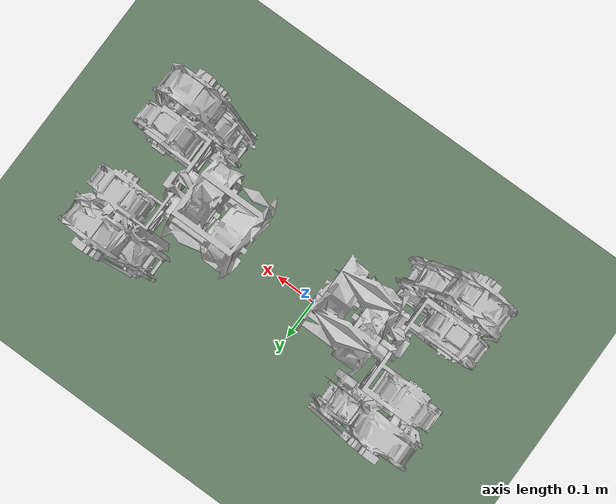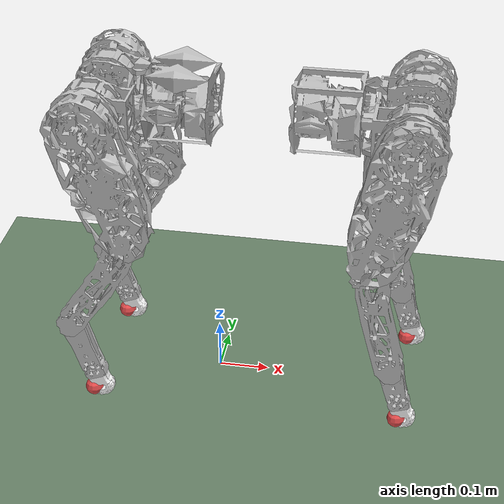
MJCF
<mujoco model="02_Leg_UFDF_260610_8">
  <compiler angle="radian" meshdir="/home/jsh/문서/jsh/simulation/quad/meshes_sim/" />
  <asset>
    <mesh name="base" content_type="model/stl" file="base.STL" />
    <mesh name="HL_hip_link" content_type="model/stl" file="HL_hip_link.STL" />
    <mesh name="HL_thigh_link" content_type="model/stl" file="HL_thigh_link.STL" />
    <mesh name="HL_calf_link" content_type="model/stl" file="HL_calf_link.STL" />
    <mesh name="HL_foot_link" content_type="model/stl" file="HL_foot_link.STL" />
    <mesh name="HL_foot_contact_link" content_type="model/stl" file="HL_foot_contact_link.STL" />
    <mesh name="HR_hip_link" content_type="model/stl" file="HR_hip_link.STL" />
    <mesh name="HR_thigh_link" content_type="model/stl" file="HR_thigh_link.STL" />
    <mesh name="HR_calf_link" content_type="model/stl" file="HR_calf_link.STL" />
    <mesh name="HR_foot_link" content_type="model/stl" file="HR_foot_link.STL" />
    <mesh name="HR_foot_contact_link" content_type="model/stl" file="HR_foot_contact_link.STL" />
    <mesh name="FL_hip_link" content_type="model/stl" file="FL_hip_link.STL" />
    <mesh name="FL_thigh_link" content_type="model/stl" file="FL_thigh_link.STL" />
    <mesh name="FL_calf_link" content_type="model/stl" file="FL_calf_link.STL" />
    <mesh name="FL_foot_link" content_type="model/stl" file="FL_foot_link.STL" />
    <mesh name="FL_foot_contact_link" content_type="model/stl" file="FL_foot_contact_link.STL" />
    <mesh name="FR_hip_link" content_type="model/stl" file="FR_hip_link.STL" />
    <mesh name="FR_thigh_link" content_type="model/stl" file="FR_thigh_link.STL" />
    <mesh name="FR_calf_link" content_type="model/stl" file="FR_calf_link.STL" />
    <mesh name="FR_foot_link" content_type="model/stl" file="FR_foot_link.STL" />
    <mesh name="FR_foot_contact_link" content_type="model/stl" file="FR_foot_contact_link.STL" />
  </asset>
  <worldbody>
    <body name="base" pos="0 0 0.6031">
      <freejoint name="root" />
      <inertial pos="0.075 1.5456e-12 4.1817e-05" quat="0.707106 0.707106 0.000998709 0.000998709" mass="5.617" diaginertia="0.00589992 0.0034812 0.00338838" />
      <geom type="mesh" contype="0" conaffinity="0" group="1" density="0" rgba="0.75294 0.75294 0.75294 1" mesh="base" />
      <geom type="mesh" rgba="0.75294 0.75294 0.75294 1" mesh="base" />
      <body name="HL_hip_link" pos="-0.225 0.0225 0">
        <inertial pos="0.03558 0.0378375 -4.9865e-06" mass="1.3265" fullinertia="0.00055394 0.00080297 0.000457195 8.00135e-06 0 0" />
        <joint name="HL_hip_joint" pos="0 0 0" axis="1 0 0" range="-0.6109 0.6109" actuatorfrcrange="-84 84" />
        <geom type="mesh" contype="0" conaffinity="0" group="1" density="0" rgba="0.75294 0.75294 0.75294 1" mesh="HL_hip_link" />
        <geom type="mesh" rgba="0.75294 0.75294 0.75294 1" mesh="HL_hip_link" />
        <body name="HL_thigh_link" pos="0 0.115 0">
          <inertial pos="0.032414 0.000792805 -0.089056" mass="3.021" fullinertia="0.00400885 0.005605 0.00170025 2.18635e-07 0.00096858 -6.0068e-07" />
          <joint name="HL_thigh_joint" pos="0 0 0" axis="0 1 0" range="-1.396 2.094" actuatorfrcrange="-84 84" />
          <geom type="mesh" contype="0" conaffinity="0" group="1" density="0" rgba="0.75294 0.75294 0.75294 1" mesh="HL_thigh_link" />
          <geom type="mesh" rgba="0.75294 0.75294 0.75294 1" mesh="HL_thigh_link" />
          <body name="HL_calf_link" pos="0.078665 0 -0.21613">
            <inertial pos="-0.04561 0.00012675 -0.084011" quat="0.683134 0.18256 0.18256 0.683134" mass="0.592" diaginertia="0.0024327 0.0023203 0.000138265" />
            <joint name="HL_calf_joint" pos="0 0 0" axis="0 1 0" range="-0.524 1.484" actuatorfrcrange="-126 126" />
            <geom type="mesh" contype="0" conaffinity="0" group="1" density="0" rgba="0.75294 0.75294 0.75294 1" mesh="HL_calf_link" />
            <geom type="mesh" rgba="0.75294 0.75294 0.75294 1" mesh="HL_calf_link" />
            <body name="HL_foot_link" pos="-0.1225 0 -0.21218">
              <inertial pos="0.021095 -1.3548e-12 -0.057957" quat="0.696362 -0.12279 -0.122789 0.696365" mass="0.20444" diaginertia="0.00030517 0.000278691 3.05195e-05" />
              <joint name="HL_foot_joint" pos="0 0 0" axis="0 1 0" range="-1.571 0.524" actuatorfrcrange="-168 168" />
              <geom type="mesh" contype="0" conaffinity="0" group="1" density="0" rgba="0.75294 0.75294 0.75294 1" mesh="HL_foot_link" />
              <geom type="mesh" rgba="0.75294 0.75294 0.75294 1" mesh="HL_foot_link" />
              <body name="HL_foot_contact_link" pos="0.0376222 0 -0.103366">
                <inertial pos="0.016812 0 -0.04619" quat="0.579233 0.405573 0.405573 0.579233" mass="0.033311" diaginertia="1.0583e-05 7.75194e-06 6.94896e-06" />
                <geom type="mesh" contype="0" conaffinity="0" group="1" density="0" rgba="1 1 1 1" mesh="HL_foot_contact_link" />
                <geom name="HL_sphere" type="sphere" size="0.018" pos="0 -0.0035 -0.052" rgba="0.9 0.3 0.3 1" friction="0.9 0.02 0.001" condim="3" />
              </body>
            </body>
          </body>
        </body>
      </body>
      <body name="HR_hip_link" pos="-0.225 -0.0225 0">
        <inertial pos="0.03558 -0.0378375 -4.9865e-06" mass="1.3265" fullinertia="0.00055394 0.00080297 0.000457195 -8.00135e-06 0 -0" />
        <joint name="HR_hip_joint" pos="0 0 0" axis="1 0 0" range="-0.6109 0.6109" actuatorfrcrange="-84 84" />
        <geom type="mesh" contype="0" conaffinity="0" group="1" density="0" rgba="0.75294 0.75294 0.75294 1" mesh="HR_hip_link" />
        <geom type="mesh" rgba="0.75294 0.75294 0.75294 1" mesh="HR_hip_link" />
        <body name="HR_thigh_link" pos="0 -0.115 0">
          <inertial pos="0.032414 -0.000792805 -0.089056" mass="3.021" fullinertia="0.00400885 0.005605 0.00170025 -2.18635e-07 0.00096858 6.0068e-07" />
          <joint name="HR_thigh_joint" pos="0 0 0" axis="0 1 0" range="-1.396 2.094" actuatorfrcrange="-84 84" />
          <geom type="mesh" contype="0" conaffinity="0" group="1" density="0" rgba="0.75294 0.75294 0.75294 1" mesh="HR_thigh_link" />
          <geom type="mesh" rgba="0.75294 0.75294 0.75294 1" mesh="HR_thigh_link" />
          <body name="HR_calf_link" pos="0.078665 0 -0.21613">
            <inertial pos="-0.04561 -0.00012405 -0.084011" quat="0.683134 0.18256 0.18256 0.683134" mass="0.592" diaginertia="0.0024327 0.0023203 0.000138265" />
            <joint name="HR_calf_joint" pos="0 0 0" axis="0 1 0" range="-0.524 1.484" actuatorfrcrange="-126 126" />
            <geom type="mesh" contype="0" conaffinity="0" group="1" density="0" rgba="0.75294 0.75294 0.75294 1" mesh="HR_calf_link" />
            <geom type="mesh" rgba="0.75294 0.75294 0.75294 1" mesh="HR_calf_link" />
            <body name="HR_foot_link" pos="-0.1225 0 -0.21218">
              <inertial pos="0.021095 -1.3544e-12 -0.057957" quat="0.696362 -0.12279 -0.122789 0.696365" mass="0.20444" diaginertia="0.00030517 0.000278691 3.05195e-05" />
              <joint name="HR_foot_joint" pos="0 0 0" axis="0 1 0" range="-1.571 0.524" actuatorfrcrange="-168 168" />
              <geom type="mesh" contype="0" conaffinity="0" group="1" density="0" rgba="0.75294 0.75294 0.75294 1" mesh="HR_foot_link" />
              <geom type="mesh" rgba="0.75294 0.75294 0.75294 1" mesh="HR_foot_link" />
              <body name="HR_foot_contact_link" pos="0.0376222 0 -0.103366">
                <inertial pos="0.016812 0 -0.04619" quat="0.579233 0.405573 0.405573 0.579233" mass="0.033311" diaginertia="1.0583e-05 7.75194e-06 6.94896e-06" />
                <geom type="mesh" contype="0" conaffinity="0" group="1" density="0" rgba="1 1 1 1" mesh="HR_foot_contact_link" />
                <geom name="HR_sphere" type="sphere" size="0.018" pos="0 -0.0035 -0.052" rgba="0.9 0.3 0.3 1" friction="0.9 0.02 0.001" condim="3" />
              </body>
            </body>
          </body>
        </body>
      </body>
      <body name="FL_hip_link" pos="0.375 0.0225 0">
        <inertial pos="-0.03558 0.0378375 -4.9865e-06" mass="1.3265" fullinertia="0.00055394 0.00080297 0.000457195 -8.00135e-06 0 0" />
        <joint name="FL_hip_joint" pos="0 0 0" axis="1 0 0" range="-0.6109 0.6109" actuatorfrcrange="-84 84" />
        <geom type="mesh" contype="0" conaffinity="0" group="1" density="0" rgba="0.75294 0.75294 0.75294 1" mesh="FL_hip_link" />
        <geom type="mesh" rgba="0.75294 0.75294 0.75294 1" mesh="FL_hip_link" />
        <body name="FL_thigh_link" pos="0 0.115 0">
          <inertial pos="-0.0245285 0.0007928 -0.091542" mass="3.021" fullinertia="0.0041595 0.005605 0.0015496 -1.654545e-07 -0.00075342 -6.1745e-07" />
          <joint name="FL_thigh_joint" pos="0 0 0" axis="0 1 0" range="-2.0071 1.484" actuatorfrcrange="-84 84" />
          <geom type="mesh" contype="0" conaffinity="0" group="1" density="0" rgba="0.75294 0.75294 0.75294 1" mesh="FL_thigh_link" />
          <geom type="mesh" rgba="0.75294 0.75294 0.75294 1" mesh="FL_thigh_link" />
          <body name="FL_calf_link" pos="-0.059528 0 -0.22216">
            <inertial pos="0.014126 0.00012405 -0.094544" quat="0.704457 -0.0611613 -0.0611613 0.704457" mass="0.592" diaginertia="0.0024327 0.00232031 0.00013827" />
            <joint name="FL_calf_joint" pos="0 0 0" axis="0 1 0" range="-1.9199 0.087" actuatorfrcrange="-126 126" />
            <geom type="mesh" contype="0" conaffinity="0" group="1" density="0" rgba="0.75294 0.75294 0.75294 1" mesh="FL_calf_link" />
            <geom type="mesh" rgba="0.75294 0.75294 0.75294 1" mesh="FL_calf_link" />
            <body name="FL_foot_link" pos="0.042544 0 -0.24128">
              <inertial pos="0.010724 -1.3835e-12 -0.040023" quat="0.701046 -0.0922999 -0.0922971 0.701068" mass="0.15434" diaginertia="0.00013375 0.000113398 2.37161e-05" />
              <joint name="FL_foot_joint" pos="0 0 0" axis="0 1 0" range="-1.309 0.785" actuatorfrcrange="-168 168" />
              <geom type="mesh" contype="0" conaffinity="0" group="1" density="0" rgba="0.75294 0.75294 0.75294 1" mesh="FL_foot_link" />
              <geom type="mesh" rgba="0.75294 0.75294 0.75294 1" mesh="FL_foot_link" />
              <body name="FL_foot_contact_link" pos="0.0181173 0 -0.0676148">
                <inertial pos="0.012722 0 -0.047479" quat="0.560982 0.430463 0.430463 0.560982" mass="0.033311" diaginertia="1.0583e-05 7.75199e-06 6.94891e-06" />
                <geom type="mesh" contype="0" conaffinity="0" group="1" density="0" rgba="1 1 1 1" mesh="FL_foot_contact_link" />
                <geom name="FL_sphere" type="sphere" size="0.018" pos="0 -0.0035 -0.052" rgba="0.9 0.3 0.3 1" friction="0.9 0.02 0.001" condim="3" />
              </body>
            </body>
          </body>
        </body>
      </body>
      <body name="FR_hip_link" pos="0.375 -0.0225 0">
        <inertial pos="-0.03558 -0.0378375 -4.9865e-06" mass="1.3265" fullinertia="0.00055394 0.00080297 0.000457195 8.00135e-06 0 -0" />
        <joint name="FR_hip_joint" pos="0 0 0" axis="1 0 0" range="-0.6109 0.6109" actuatorfrcrange="-84 84" />
        <geom type="mesh" contype="0" conaffinity="0" group="1" density="0" rgba="0.75294 0.75294 0.75294 1" mesh="FR_hip_link" />
        <geom type="mesh" rgba="0.75294 0.75294 0.75294 1" mesh="FR_hip_link" />
        <body name="FR_thigh_link" pos="0 -0.115 0">
          <inertial pos="-0.0245285 -0.0007928 -0.091542" mass="3.021" fullinertia="0.0041595 0.005605 0.0015496 1.654545e-07 -0.00075342 6.1745e-07" />
          <joint name="FR_thigh_joint" pos="0 0 0" axis="0 1 0" range="-2.0071 1.484" actuatorfrcrange="-84 84" />
          <geom type="mesh" contype="0" conaffinity="0" group="1" density="0" rgba="0.75294 0.75294 0.75294 1" mesh="FR_thigh_link" />
          <geom type="mesh" rgba="0.75294 0.75294 0.75294 1" mesh="FR_thigh_link" />
          <body name="FR_calf_link" pos="-0.059528 0 -0.22216">
            <inertial pos="0.014126 -0.00012675 -0.094544" quat="0.704457 -0.0611613 -0.0611613 0.704457" mass="0.592" diaginertia="0.0024327 0.00232031 0.00013827" />
            <joint name="FR_calf_joint" pos="0 0 0" axis="0 1 0" range="-1.9199 0.087" actuatorfrcrange="-126 126" />
            <geom type="mesh" contype="0" conaffinity="0" group="1" density="0" rgba="0.75294 0.75294 0.75294 1" mesh="FR_calf_link" />
            <geom type="mesh" rgba="0.75294 0.75294 0.75294 1" mesh="FR_calf_link" />
            <body name="FR_foot_link" pos="0.042544 0 -0.24128">
              <inertial pos="0.010724 -1.3833e-12 -0.040023" quat="0.701046 -0.0922999 -0.0922971 0.701068" mass="0.15434" diaginertia="0.00013375 0.000113398 2.37161e-05" />
              <joint name="FR_foot_joint" pos="0 0 0" axis="0 1 0" range="-1.309 0.785" actuatorfrcrange="-168 168" />
              <geom type="mesh" contype="0" conaffinity="0" group="1" density="0" rgba="0.75294 0.75294 0.75294 1" mesh="FR_foot_link" />
              <geom type="mesh" rgba="0.75294 0.75294 0.75294 1" mesh="FR_foot_link" />
              <body name="FR_foot_contact_link" pos="0.0181173 0 -0.0676148">
                <inertial pos="0.012722 0 -0.047479" quat="0.560982 0.430463 0.430463 0.560982" mass="0.033311" diaginertia="1.0583e-05 7.75199e-06 6.94891e-06" />
                <geom type="mesh" contype="0" conaffinity="0" group="1" density="0" rgba="1 1 1 1" mesh="FR_foot_contact_link" />
                <geom name="FR_sphere" type="sphere" size="0.018" pos="0 -0.0035 -0.052" rgba="0.9 0.3 0.3 1" friction="0.9 0.02 0.001" condim="3" />
              </body>
            </body>
          </body>
        </body>
      </body>
    </body>
    <geom name="floor" type="plane" size="5 5 0.1" rgba="0.4 0.5 0.4 1" />
    <light pos="0 0 3" dir="0 0 -1" />
  </worldbody>
  <option timestep="0.002" gravity="0 0 -9.81" />
  <default>
    <geom friction="0.9 0.02 0.001" condim="3" />
    <motor ctrllimited="true" ctrlrange="-80 80" />
  </default>
  <actuator>
    <motor joint="HL_hip_joint" name="HL_hip" />
    <motor joint="HL_thigh_joint" name="HL_thigh" />
    <motor joint="HL_calf_joint" name="HL_calf" />
    <motor joint="HL_foot_joint" name="HL_foot" />
    <motor joint="HR_hip_joint" name="HR_hip" />
    <motor joint="HR_thigh_joint" name="HR_thigh" />
    <motor joint="HR_calf_joint" name="HR_calf" />
    <motor joint="HR_foot_joint" name="HR_foot" />
    <motor joint="FL_hip_joint" name="FL_hip" />
    <motor joint="FL_thigh_joint" name="FL_thigh" />
    <motor joint="FL_calf_joint" name="FL_calf" />
    <motor joint="FL_foot_joint" name="FL_foot" />
    <motor joint="FR_hip_joint" name="FR_hip" />
    <motor joint="FR_thigh_joint" name="FR_thigh" />
    <motor joint="FR_calf_joint" name="FR_calf" />
    <motor joint="FR_foot_joint" name="FR_foot" />
  </actuator>
</mujoco>
